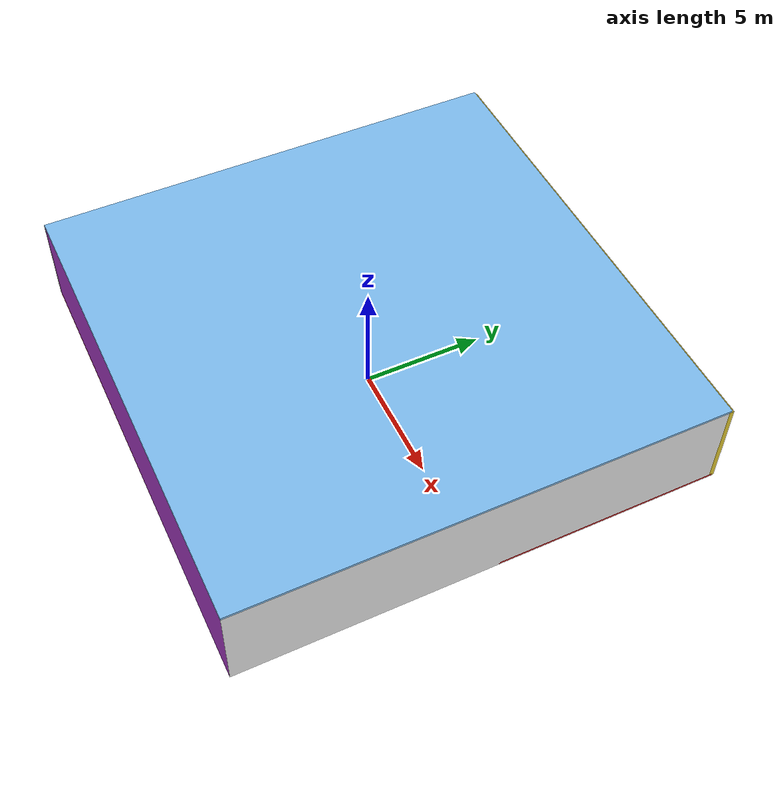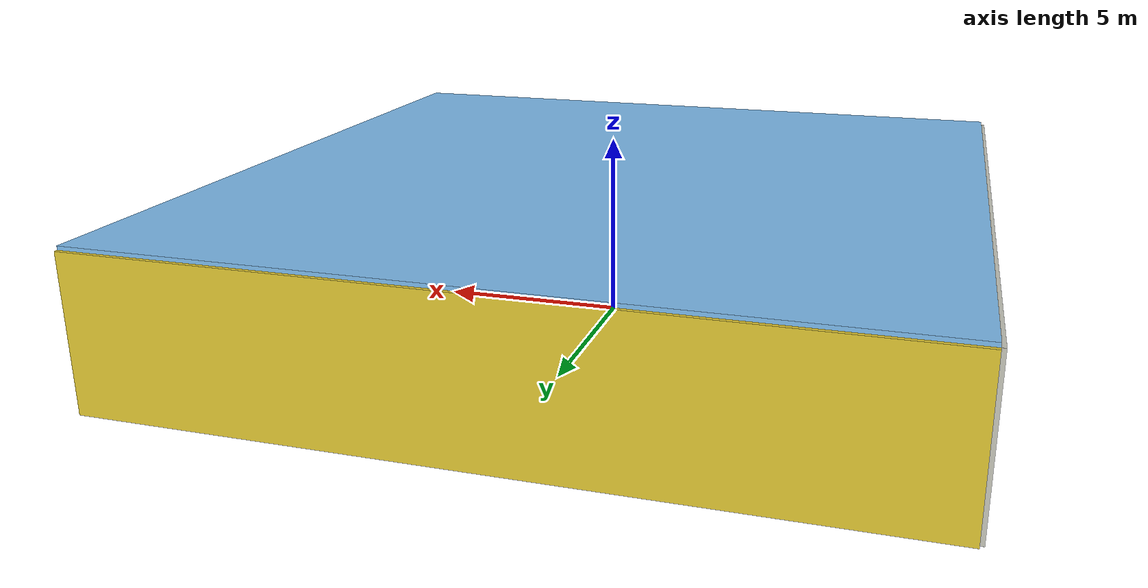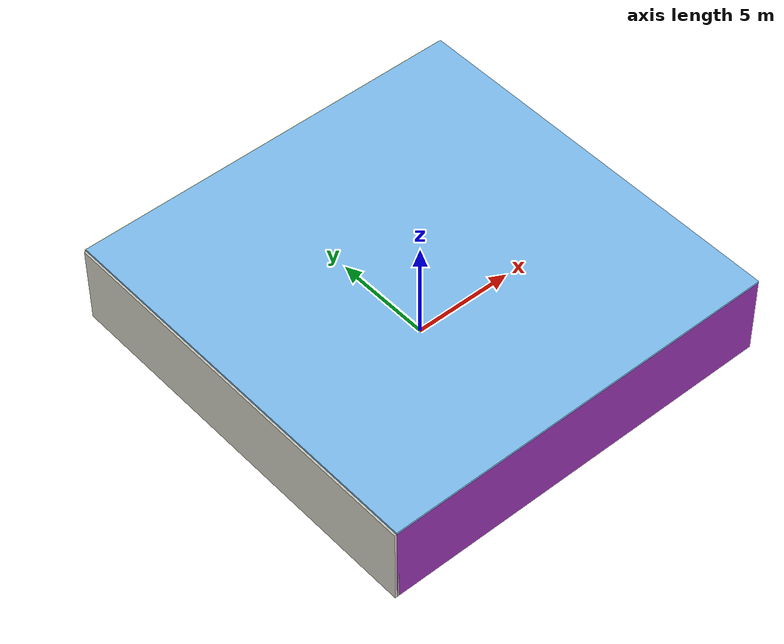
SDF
<sdf version="1.4">
 <world name="default">
  <physics type="ode">
   <max_step_size>0.001</max_step_size>
   <real_time_factor>1</real_time_factor>
   <real_time_update_rate>1000</real_time_update_rate>
   <gravity>0 0 -9.8</gravity>
  </physics>
  <scene><ambient>0.4 0.4 0.4 1</ambient><background>0.7 0.7 0.7 1</background><shadows>1</shadows></scene>
  <model name="Surrounding">
   <static>1</static>
   <link name="Ceiling">
    <collision name="Ceiling_Collision"><geometry><box><size>20 20 0.1</size></box></geometry></collision>
    <visual name="Ceiling_Visual">
     <geometry><box><size>20 20 0.1</size></box></geometry>
     <material>
      <script><uri>file://media/materials/scripts/gazebo.material</uri><name>Gazebo/SkyBlue</name></script>
     </material>
    </visual>
    <pose>0 0 4.05 0 0 0</pose>
   </link>
   <link name="Wall_South">
    <collision name="Wall_South_Collision">
     <geometry><box><size>20 0 4</size></box></geometry>
     <pose>0 0 2 0 -0 0</pose>
    </collision>
    <visual name="Wall_South_Visual">
     <pose>0 0 2 0 -0 0</pose>
     <geometry><box><size>20 0 4</size></box></geometry>
     <material>
      <script><uri>file://media/materials/scripts/gazebo.material</uri><name>Gazebo/PurpleGlow</name></script>
     </material>
    </visual>
    <velocity_decay><linear>0</linear><angular>0</angular></velocity_decay>
    <pose>0 -10 0 0 -0 0</pose>
   </link>
   <link name="Wall_East">
    <collision name="Wall_21_Collision">
     <geometry><box><size>20 0 4</size></box></geometry>
     <pose>0 0 2 0 -0 0</pose>
    </collision>
    <visual name="Wall_21_Visual">
     <pose>0 0 2 0 -0 0</pose>
     <geometry><box><size>20 0 4</size></box></geometry>
     <material>
      <script><uri>file://media/materials/scripts/gazebo.material</uri><name>Gazebo/WhiteGlow</name></script>
     </material>
    </visual>
    <velocity_decay><linear>0</linear><angular>0</angular></velocity_decay>
    <pose>10 0 0 0 -0 1.5708</pose>
   </link>
   <link name="Wall_North">
    <collision name="Wall_22_Collision">
     <geometry><box><size>20 0.2 4</size></box></geometry>
     <pose>0 0 2 0 -0 0</pose>
    </collision>
    <visual name="Wall_22_Visual">
     <pose>0 0 2 0 -0 0</pose>
     <geometry><box><size>20 0.2 4</size></box></geometry>
     <material>
      <script><uri>file://media/materials/scripts/gazebo.material</uri><name>Gazebo/ZincYellow</name></script>
     </material>
    </visual>
    <velocity_decay><linear>0</linear><angular>0</angular></velocity_decay>
    <pose>0 10 0 0 -0 0</pose>
   </link>
   <link name="Wall_West">
    <collision name="Wall_23_Collision">
     <geometry><box><size>20 0.2 4</size></box></geometry>
     <pose>0 0 2 0 -0 0</pose>
    </collision>
    <visual name="Wall_23_Visual">
     <pose>0 0 2 0 -0 0</pose>
     <geometry><box><size>20 0.2 4</size></box></geometry>
     <material>
      <script><uri>file://media/materials/scripts/gazebo.material</uri><name>Gazebo/PaintedWall</name></script>
     </material>
    </visual>
    <velocity_decay><linear>0</linear><angular>0</angular></velocity_decay>
    <pose>-10 0 0 0 0 -1.5708</pose>
   </link>
   <link name="Ground_link">
    <collision name="collision">
     <pose>0 0 .05 0 -0 0</pose>
     <geometry><box><size>20 20 0.1</size></box></geometry>
    </collision>
    <visual name="visual">
     <pose>0 0 .05 0 -0 0</pose>
     <geometry><box><size>20 20 0.1</size></box></geometry>
     <material>
      <script><uri>file://media/materials/scripts/gazebo.material</uri><name>Gazebo/RedBright</name></script>
     </material>
    </visual>
   </link>
   <static>1</static>
  </model>
  <spherical_coordinates>
   <surface_model>EARTH_WGS84</surface_model>
   <latitude_deg>0</latitude_deg>
   <longitude_deg>0</longitude_deg>
   <elevation>0</elevation>
   <heading_deg>0</heading_deg>
  </spherical_coordinates>
  <light name="lightball_0" type="diffuse">
   <diffuse>0.8 0.8 0.8 1</diffuse>
   <specular>0.2 0.2 0.2 1</specular>
   <attenuation>
    <range>100</range>
    <constant>0.7</constant>
    <linear>0.01</linear>
    <quadratic>0.001</quadratic>
   </attenuation>
   <direction>-0.5 0.1 -0.9</direction>
   <pose>-4.97567595056 -2.94634850539 2.33557279696 0 0 0</pose>
  </light>
  <light name="lightball_1" type="diffuse">
   <diffuse>0.8 0.8 0.8 1</diffuse>
   <specular>0.2 0.2 0.2 1</specular>
   <attenuation>
    <range>100</range>
    <constant>0.7</constant>
    <linear>0.01</linear>
    <quadratic>0.001</quadratic>
   </attenuation>
   <direction>-0.5 0.1 -0.9</direction>
   <pose>6.27308178869 -0.403411926074 1.28421219725 0 0 0</pose>
  </light>
  <light name="lightball_2" type="diffuse">
   <diffuse>0.8 0.8 0.8 1</diffuse>
   <specular>0.2 0.2 0.2 1</specular>
   <attenuation>
    <range>100</range>
    <constant>0.7</constant>
    <linear>0.01</linear>
    <quadratic>0.001</quadratic>
   </attenuation>
   <direction>-0.5 0.1 -0.9</direction>
   <pose>-2.98031681921 3.92954340465 3.74745525961 0 0 0</pose>
  </light>
  <light name="lightball_3" type="diffuse">
   <diffuse>0.8 0.8 0.8 1</diffuse>
   <specular>0.2 0.2 0.2 1</specular>
   <attenuation>
    <range>100</range>
    <constant>0.7</constant>
    <linear>0.01</linear>
    <quadratic>0.001</quadratic>
   </attenuation>
   <direction>-0.5 0.1 -0.9</direction>
   <pose>-3.32878363137 1.13390269636 1.66478798651 0 0 0</pose>
  </light>
  <light name="lightball_4" type="diffuse">
   <diffuse>0.8 0.8 0.8 1</diffuse>
   <specular>0.2 0.2 0.2 1</specular>
   <attenuation>
    <range>100</range>
    <constant>0.7</constant>
    <linear>0.01</linear>
    <quadratic>0.001</quadratic>
   </attenuation>
   <direction>-0.5 0.1 -0.9</direction>
   <pose>6.11548823666 0.116228269776 0.980354607313 0 0 0</pose>
  </light>
  <include><uri>model://cabinet</uri><pose>-8.16235488542 2.26542579109 0 0 0 1.34666176054</pose></include>
  <include>
   <uri>model://robocup_3Dsim_goal</uri>
   <pose>-2.4441167407 0.832048674132 0 0 0 2.99195790921</pose>
  </include>
  <include>
   <uri>model://robocup_3Dsim_goal</uri>
   <pose>-2.2404085326 4.7405081624 0 0 0 2.95194802011</pose>
  </include>
 </world>
</sdf>

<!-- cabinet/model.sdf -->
<sdf version="1.5">
  <model name="cabinet">
    <static>true</static>
    <link name="cabinet_bottom_plate">
      <inertial>
        <pose>0 0 -1 0 0 0</pose>
        <inertia>
          <ixx>2.050000</ixx>
          <ixy>0</ixy>
          <ixz>0</ixz>
          <iyy>2.050000</iyy>
          <iyz>0</iyz>
          <izz>2.050000</izz>
        </inertia>
        <mass>25.000000</mass>
      </inertial>
      <collision name="cabinet_bottom_plate_geom">
        <pose>0 0 0.010000 0 0 0</pose>
        <geometry>
          <box>
            <size>0.450000 0.450000 0.020000</size>
          </box>
        </geometry>
      </collision>
      <visual name="cabinet_bottom_plate_geom_visual">
        <pose>0 0 0.010000 0 0 0</pose>
        <geometry>
          <box>
            <size>0.450000 0.450000 0.020000</size>
          </box>
        </geometry>
        <material>
          <script>
            <uri>model://media/materials/scripts/gazebo.material</uri>
            <name>Gazebo/Wood</name>
          </script>
        </material>
      </visual>
      <collision name="cabinet_bottom_plate_geom_cabinet_back_plate">
        <pose>0.235000 0 0.510000 0 0 0</pose>
        <geometry>
          <box>
            <size>0.020000 0.450000 1.020000</size>
          </box>
        </geometry>
      </collision>
      <visual name="cabinet_bottom_plate_geom_cabinet_back_plate_visual">
        <pose>0.235000 0 0.510000 0 0 0</pose>
        <geometry>
          <box>
            <size>0.020000 0.450000 1.020000</size>
          </box>
        </geometry>
        <material>
          <script>
            <uri>model://media/materials/scripts/gazebo.material</uri>
            <name>Gazebo/Wood</name>
          </script>
        </material>
      </visual>
      <collision name="cabinet_bottom_plate_geom_cabinet_left_plate">
        <pose>0 0.235000 0.510000 0 0 0</pose>
        <geometry>
          <box>
            <size>0.450000 0.020000 1.020000</size>
          </box>
        </geometry>
      </collision>
      <visual name="cabinet_bottom_plate_geom_cabinet_left_plate_visual">
        <pose>0 0.235000 0.510000 0 0 0</pose>
        <geometry>
          <box>
            <size>0.450000 0.020000 1.020000</size>
          </box>
        </geometry>
        <material>
          <script>
            <uri>model://media/materials/scripts/gazebo.material</uri>
            <name>Gazebo/Wood</name>
          </script>
        </material>
      </visual>
      <collision name="cabinet_bottom_plate_geom_cabinet_middle_plate">
        <pose>0 0 0.510000 0 0 0</pose>
        <geometry>
          <box>
            <size>0.450000 0.450000 0.020000</size>
          </box>
        </geometry>
      </collision>
      <visual name="cabinet_bottom_plate_geom_cabinet_middle_plate_visual">
        <pose>0 0 0.510000 0 0 0</pose>
        <geometry>
          <box>
            <size>0.450000 0.450000 0.020000</size>
          </box>
        </geometry>
        <material>
          <script>
            <uri>model://media/materials/scripts/gazebo.material</uri>
            <name>Gazebo/Wood</name>
          </script>
        </material>
      </visual>
      <collision name="cabinet_bottom_plate_geom_cabinet_right_plate">
        <pose>0 -0.235000 0.510000 0 0 0</pose>
        <geometry>
          <box>
            <size>0.450000 0.020000 1.020000</size>
          </box>
        </geometry>
      </collision>
      <visual name="cabinet_bottom_plate_geom_cabinet_right_plate_visual">
        <pose>0 -0.235000 0.510000 0 0 0</pose>
        <geometry>
          <box>
            <size>0.450000 0.020000 1.020000</size>
          </box>
        </geometry>
        <material>
          <script>
            <uri>model://media/materials/scripts/gazebo.material</uri>
            <name>Gazebo/Wood</name>
          </script>
        </material>
      </visual>
      <collision name="cabinet_bottom_plate_geom_cabinet_top_plate">
        <pose>0 0 1.010000 0 0 0</pose>
        <geometry>
          <box>
            <size>0.450000 0.450000 0.020000</size>
          </box>
        </geometry>
      </collision>
      <visual name="cabinet_bottom_plate_geom_cabinet_top_plate_visual">
        <pose>0 0 1.010000 0 0 0</pose>
        <geometry>
          <box>
            <size>0.450000 0.450000 0.020000</size>
          </box>
        </geometry>
        <material>
          <script>
            <uri>model://media/materials/scripts/gazebo.material</uri>
            <name>Gazebo/Wood</name>
          </script>
        </material>
      </visual>
    </link>
  </model>
</sdf>

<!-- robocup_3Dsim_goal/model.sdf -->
<sdf version="1.5">
  <model name="robocup_3d_goal">
    <static>true</static>
    <link name="left_post">
      <pose>0 1.05 0.45 0 0 0</pose>
      <collision name="collision">
        <geometry>
          <cylinder>
            <radius>0.05</radius>
            <length>0.9</length>
          </cylinder>
        </geometry>
      </collision>
      <visual name="visual">
        <geometry>
          <cylinder>
            <radius>0.05</radius>
            <length>0.9</length>
          </cylinder>
        </geometry>
        <material>
          <script>
            <uri>file://media/materials/scripts/gazebo.material</uri>
            <name>Gazebo/ZincYellow</name>
          </script>
        </material>
      </visual>
    </link>
    <link name="left_support_horiz_lower">
      <pose>0.30 1.05 0.01 0 0 0</pose>
      <collision name="collision">
        <geometry>
          <box>
            <size>0.50 0.02 0.02</size>
          </box>
        </geometry>
      </collision>
      <visual name="visual">
        <geometry>
          <box>
            <size>0.50 0.02 0.02</size>
          </box>
        </geometry>
        <material>
          <script>
            <uri>file://media/materials/scripts/gazebo.material</uri>
            <name>Gazebo/White</name>
          </script>
        </material>
      </visual>
    </link>
    <link name="left_support_horiz_upper">
      <pose>0.30 1.05 0.79 0 0 0</pose>
      <collision name="collision">
        <geometry>
          <box>
            <size>0.50 0.02 0.02</size>
          </box>
        </geometry>
      </collision>
      <visual name="visual">
        <geometry>
          <box>
            <size>0.50 0.02 0.02</size>
          </box>
        </geometry>
        <material>
          <script>
            <uri>file://media/materials/scripts/gazebo.material</uri>
            <name>Gazebo/White</name>
          </script>
        </material>
      </visual>
    </link>
    <link name="left_support_vertical">
      <pose>0.56 1.05 0.4 0 1.5708 0</pose>
      <collision name="collision">
        <geometry>
          <box>
            <size>0.80 0.02 0.02</size>
          </box>
        </geometry>
      </collision>
      <visual name="visual">
        <geometry>
          <box>
            <size>0.80 0.02 0.02</size>
          </box>
        </geometry>
        <material>
          <script>
            <uri>file://media/materials/scripts/gazebo.material</uri>
            <name>Gazebo/White</name>
          </script>
        </material>
      </visual>
    </link>
    <link name="right_support_horiz_lower">
      <pose>0.30 -1.05 0.01 0 0 0</pose>
      <collision name="collision">
        <geometry>
          <box>
            <size>0.50 0.02 0.02</size>
          </box>
        </geometry>
      </collision>
      <visual name="visual">
        <geometry>
          <box>
            <size>0.50 0.02 0.02</size>
          </box>
        </geometry>
        <material>
          <script>
            <uri>file://media/materials/scripts/gazebo.material</uri>
            <name>Gazebo/White</name>
          </script>
        </material>
      </visual>
    </link>
    <link name="right_support_horiz_upper">
      <pose>0.30 -1.05 0.79 0 0 0</pose>
      <collision name="collision">
        <geometry>
          <box>
            <size>0.50 0.02 0.02</size>
          </box>
        </geometry>
      </collision>
      <visual name="visual">
        <geometry>
          <box>
            <size>0.50 0.02 0.02</size>
          </box>
        </geometry>
        <material>
          <script>
            <uri>file://media/materials/scripts/gazebo.material</uri>
            <name>Gazebo/White</name>
          </script>
        </material>
      </visual>
    </link>
    <link name="right_support_vertical">
      <pose>0.56 -1.05 0.4 0 1.5708 0</pose>
      <collision name="collision">
        <geometry>
          <box>
            <size>0.80 0.02 0.02</size>
          </box>
        </geometry>
      </collision>
      <visual name="visual">
        <geometry>
          <box>
            <size>0.80 0.02 0.02</size>
          </box>
        </geometry>
        <material>
          <script>
            <uri>file://media/materials/scripts/gazebo.material</uri>
            <name>Gazebo/White</name>
          </script>
        </material>
      </visual>
    </link>
    <link name="center_support_horiz_lower">
      <pose>0.56 0 0.01 0 1.5708 0</pose>
      <collision name="collision">
        <geometry>
          <box>
            <size>0.02 2.08 0.02</size>
          </box>
        </geometry>
      </collision>
      <visual name="visual">
        <geometry>
          <box>
            <size>0.02 2.08 0.02</size>
          </box>
        </geometry>
        <material>
          <script>
            <uri>file://media/materials/scripts/gazebo.material</uri>
            <name>Gazebo/White</name>
          </script>
        </material>
      </visual>
    </link>
    <link name="center_support_horiz_upper">
      <pose>0.56 0 0.79 0 1.5708 0</pose>
      <collision name="collision">
        <geometry>
          <box>
            <size>0.02 2.08 0.02</size>
          </box>
        </geometry>
      </collision>
      <visual name="visual">
        <geometry>
          <box>
            <size>0.02 2.08 0.02</size>
          </box>
        </geometry>
        <material>
          <script>
            <uri>file://media/materials/scripts/gazebo.material</uri>
            <name>Gazebo/White</name>
          </script>
        </material>
      </visual>
    </link>
    <link name="right_post">
      <pose>0 -1.05 0.45 0 0 0</pose>
      <collision name="collision">
        <geometry>
          <cylinder>
            <radius>0.05</radius>
            <length>0.9</length>
          </cylinder>
        </geometry>
      </collision>
      <visual name="visual">
        <geometry>
          <cylinder>
            <radius>0.05</radius>
            <length>0.9</length>
          </cylinder>
        </geometry>
        <material>
          <script>
            <uri>file://media/materials/scripts/gazebo.material</uri>
            <name>Gazebo/ZincYellow</name>
          </script>
        </material>
      </visual>
    </link>
    <link name="crossbar">
      <pose>0 0 0.85 1.57 1.57 0</pose>
      <collision name="collision">
        <geometry>
          <cylinder>
            <radius>0.05</radius>
            <length>2.0</length>
          </cylinder>
        </geometry>
      </collision>
      <visual name="visual">
        <geometry>
          <cylinder>
            <radius>0.05</radius>
            <length>2.0</length>
          </cylinder>
        </geometry>
        <material>
          <script>
            <uri>file://media/materials/scripts/gazebo.material</uri>
            <name>Gazebo/ZincYellow</name>
          </script>
        </material>
      </visual>
    </link>
    <link name="center_net">
      <pose>0.56 0 0.40 0 0 0</pose>
      <collision name="collision">
        <geometry>
          <box>
            <size>0.01 2.1 0.80</size>
          </box>
        </geometry>
      </collision>
      <visual name="visual">
        <geometry>
          <box>
            <size>0.01 2.1 0.80</size>
          </box>
        </geometry>
        <material>
          <script>
            <uri>model://../model_source/models/robocup09_spl_field/materials/scripts/</uri>
            <uri>model://../model_source/models/robocup09_spl_field/materials/textures/</uri>
            <name>RoboCup/Net</name>
          </script>
        </material>
      </visual>
    </link>
    <link name="left_net">
      <pose>0.30 1.05 0.40 0 0 0</pose>
      <collision name="collision">
        <geometry>
          <box>
            <size>0.50 0.01 0.76</size>
          </box>
        </geometry>
      </collision>
      <visual name="visual">
        <geometry>
          <box>
            <size>0.50 0.01 0.76</size>
          </box>
        </geometry>
        <material>
          <script>
            <uri>model://../model_source/models/robocup09_spl_field/materials/scripts/</uri>
            <uri>model://../model_source/models/robocup09_spl_field/materials/textures/</uri>
            <name>RoboCup/Net</name>
          </script>
        </material>
      </visual>
    </link>
    <link name="right_net">
      <pose>0.30 -1.05 0.40 0 0 0</pose>
      <collision name="collision">
        <geometry>
          <box>
            <size>0.50 0.01 0.76</size>
          </box>
        </geometry>
      </collision>
      <visual name="visual">
        <geometry>
          <box>
            <size>0.50 0.01 0.76</size>
          </box>
        </geometry>
        <material>
          <script>
            <uri>model://../model_source/models/robocup09_spl_field/materials/scripts/</uri>
            <uri>model://../model_source/models/robocup09_spl_field/materials/textures/</uri>
            <name>RoboCup/Net</name>
          </script>
        </material>
      </visual>
    </link>
  </model>
</sdf>
